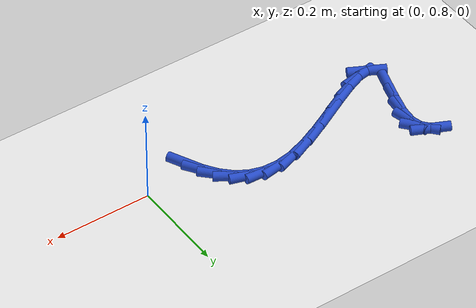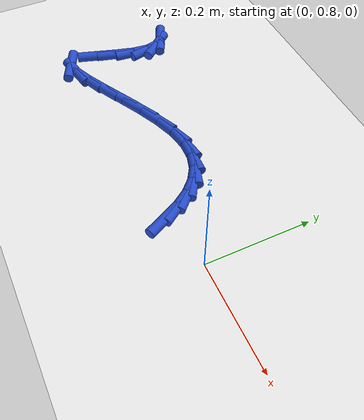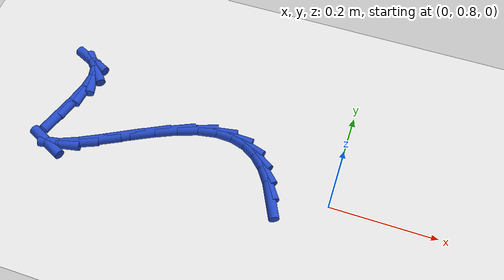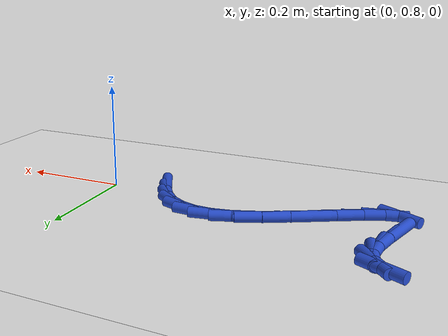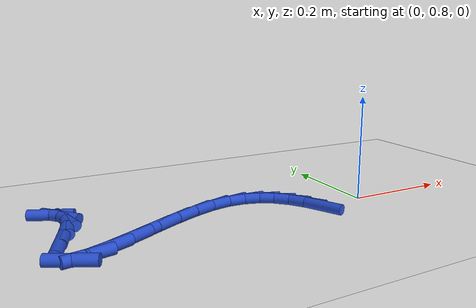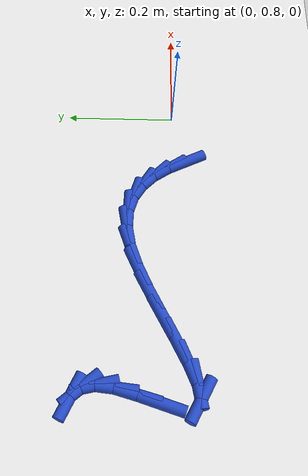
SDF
<sdf version="1.6">
 <world name="default">
  <model name="ground_plane">
   <static>1</static>
   <link name="link">
    <collision name="collision">
     <geometry><plane><normal>0 0 1</normal><size>100 100</size></plane></geometry>
     <surface><friction><ode><mu>100</mu><mu2>50</mu2></ode></friction></surface>
    </collision>
    <visual name="visual">
     <cast_shadows>0</cast_shadows>
     <geometry><plane><normal>0 0 1</normal><size>100 100</size></plane></geometry>
     <material>
      <script><uri>file://media/materials/scripts/gazebo.material</uri><name>Gazebo/WhiteGlow</name></script>
     </material>
    </visual>
   </link>
  </model>
  <model name="line">
   <link name="link_19">
    <pose>-0.10341694763051931 0.7761363183524299 0.01 0 1.57 -1.1203343275249618</pose>
    <collision name="collision">
     <geometry><cylinder><radius>0.01</radius><length>0.08</length></cylinder></geometry>
    </collision>
    <visual name="visual">
     <material>
      <script><name>Gazebo/Blue</name><uri>file://media/materials/scripts/gazebo.material</uri></script>
     </material>
     <geometry><cylinder><radius>0.01</radius><length>0.08</length></cylinder></geometry>
    </visual>
   </link>
   <link name="link_20">
    <pose>-0.11862843986905935 0.8075893912146389 0.01 0 1.57 -0.9756378624648923</pose>
    <collision name="collision">
     <geometry><cylinder><radius>0.01</radius><length>0.08</length></cylinder></geometry>
    </collision>
    <visual name="visual">
     <material>
      <script><name>Gazebo/Blue</name><uri>file://media/materials/scripts/gazebo.material</uri></script>
     </material>
     <geometry><cylinder><radius>0.01</radius><length>0.08</length></cylinder></geometry>
    </visual>
   </link>
   <link name="link_21">
    <pose>-0.13666715192454448 0.834232389323005 0.01 0 1.57 -0.7868244179630445</pose>
    <collision name="collision">
     <geometry><cylinder><radius>0.01</radius><length>0.08</length></cylinder></geometry>
    </collision>
    <visual name="visual">
     <material>
      <script><name>Gazebo/Blue</name><uri>file://media/materials/scripts/gazebo.material</uri></script>
     </material>
     <geometry><cylinder><radius>0.01</radius><length>0.08</length></cylinder></geometry>
    </visual>
   </link>
   <link name="link_22">
    <pose>-0.1578327359681547 0.8554584346625629 0.01 0 1.57 -0.5536760380981668</pose>
    <collision name="collision">
     <geometry><cylinder><radius>0.01</radius><length>0.08</length></cylinder></geometry>
    </collision>
    <visual name="visual">
     <material>
      <script><name>Gazebo/Blue</name><uri>file://media/materials/scripts/gazebo.material</uri></script>
     </material>
     <geometry><cylinder><radius>0.01</radius><length>0.08</length></cylinder></geometry>
    </visual>
   </link>
   <link name="link_23">
    <pose>-0.18242484417106986 0.8706606492183468 0.01 0 1.57 -0.2939178139863472</pose>
    <collision name="collision">
     <geometry><cylinder><radius>0.01</radius><length>0.08</length></cylinder></geometry>
    </collision>
    <visual name="visual">
     <material>
      <script><name>Gazebo/Blue</name><uri>file://media/materials/scripts/gazebo.material</uri></script>
     </material>
     <geometry><cylinder><radius>0.01</radius><length>0.08</length></cylinder></geometry>
    </visual>
   </link>
   <link name="link_24">
    <pose>-0.2107431287044702 0.8792321549753914 0.01 0 1.57 -0.04121811728965706</pose>
    <collision name="collision">
     <geometry><cylinder><radius>0.01</radius><length>0.08</length></cylinder></geometry>
    </collision>
    <visual name="visual">
     <material>
      <script><name>Gazebo/Blue</name><uri>file://media/materials/scripts/gazebo.material</uri></script>
     </material>
     <geometry><cylinder><radius>0.01</radius><length>0.08</length></cylinder></geometry>
    </visual>
   </link>
   <link name="link_25">
    <pose>-0.24308724173953547 0.8805660739187308 0.01 0 1.57 0.1757151035363333</pose>
    <collision name="collision">
     <geometry><cylinder><radius>0.01</radius><length>0.08</length></cylinder></geometry>
    </collision>
    <visual name="visual">
     <material>
      <script><name>Gazebo/Blue</name><uri>file://media/materials/scripts/gazebo.material</uri></script>
     </material>
     <geometry><cylinder><radius>0.01</radius><length>0.08</length></cylinder></geometry>
    </visual>
   </link>
   <link name="link_26">
    <pose>-0.27975683544744584 0.8740555280333993 0.01 0 1.57 0.3384609954954084</pose>
    <collision name="collision">
     <geometry><cylinder><radius>0.01</radius><length>0.08</length></cylinder></geometry>
    </collision>
    <visual name="visual">
     <material>
      <script><name>Gazebo/Blue</name><uri>file://media/materials/scripts/gazebo.material</uri></script>
     </material>
     <geometry><cylinder><radius>0.01</radius><length>0.08</length></cylinder></geometry>
    </visual>
   </link>
   <link name="link_27">
    <pose>-0.32065855699211976 0.8596578668622273 0.01 0 1.57 0.4316609335593668</pose>
    <collision name="collision">
     <geometry><cylinder><radius>0.01</radius><length>0.08</length></cylinder></geometry>
    </collision>
    <visual name="visual">
     <material>
      <script><name>Gazebo/Blue</name><uri>file://media/materials/scripts/gazebo.material</uri></script>
     </material>
     <geometry><cylinder><radius>0.01</radius><length>0.08</length></cylinder></geometry>
    </visual>
   </link>
   <link name="link_28">
    <pose>-0.36407830859653223 0.8396573033287732 0.01 0 1.57 0.4784481100144128</pose>
    <collision name="collision">
     <geometry><cylinder><radius>0.01</radius><length>0.08</length></cylinder></geometry>
    </collision>
    <visual name="visual">
     <material>
      <script><name>Gazebo/Blue</name><uri>file://media/materials/scripts/gazebo.material</uri></script>
     </material>
     <geometry><cylinder><radius>0.01</radius><length>0.08</length></cylinder></geometry>
    </visual>
   </link>
   <link name="link_29">
    <pose>-0.40788424982599303 0.816937793146551 0.01 0 1.57 0.49221924320158916</pose>
    <collision name="collision">
     <geometry><cylinder><radius>0.01</radius><length>0.08</length></cylinder></geometry>
    </collision>
    <visual name="visual">
     <material>
      <script><name>Gazebo/Blue</name><uri>file://media/materials/scripts/gazebo.material</uri></script>
     </material>
     <geometry><cylinder><radius>0.01</radius><length>0.08</length></cylinder></geometry>
    </visual>
   </link>
   <link name="link_30">
    <pose>-0.44994453981901295 0.7943832926418193 0.01 0 1.57 0.4722868155899715</pose>
    <collision name="collision">
     <geometry><cylinder><radius>0.01</radius><length>0.08</length></cylinder></geometry>
    </collision>
    <visual name="visual">
     <material>
      <script><name>Gazebo/Blue</name><uri>file://media/materials/scripts/gazebo.material</uri></script>
     </material>
     <geometry><cylinder><radius>0.01</radius><length>0.08</length></cylinder></geometry>
    </visual>
   </link>
   <link name="link_31">
    <pose>-0.4881273377141033 0.7748777581408365 0.01 0 1.57 0.39920577333253987</pose>
    <collision name="collision">
     <geometry><cylinder><radius>0.01</radius><length>0.08</length></cylinder></geometry>
    </collision>
    <visual name="visual">
     <material>
      <script><name>Gazebo/Blue</name><uri>file://media/materials/scripts/gazebo.material</uri></script>
     </material>
     <geometry><cylinder><radius>0.01</radius><length>0.08</length></cylinder></geometry>
    </visual>
   </link>
   <link name="link_32">
    <pose>-0.5203008026497754 0.7613051459698613 0.01 0 1.57 0.1953652292399074</pose>
    <collision name="collision">
     <geometry><cylinder><radius>0.01</radius><length>0.08</length></cylinder></geometry>
    </collision>
    <visual name="visual">
     <material>
      <script><name>Gazebo/Blue</name><uri>file://media/materials/scripts/gazebo.material</uri></script>
     </material>
     <geometry><cylinder><radius>0.01</radius><length>0.08</length></cylinder></geometry>
    </visual>
   </link>
   <link name="link_33">
    <pose>-0.5443330937645399 0.756549412455152 0.01 0 1.57 -0.4674465640434654</pose>
    <collision name="collision">
     <geometry><cylinder><radius>0.01</radius><length>0.08</length></cylinder></geometry>
    </collision>
    <visual name="visual">
     <material>
      <script><name>Gazebo/Blue</name><uri>file://media/materials/scripts/gazebo.material</uri></script>
     </material>
     <geometry><cylinder><radius>0.01</radius><length>0.08</length></cylinder></geometry>
    </visual>
   </link>
   <link name="link_36">
    <pose>-0.551530255745919 0.8178350262244877 0.01 0 1.57 1.2647704939799607</pose>
    <collision name="collision">
     <geometry><cylinder><radius>0.01</radius><length>0.08</length></cylinder></geometry>
    </collision>
    <visual name="visual">
     <material>
      <script><name>Gazebo/Blue</name><uri>file://media/materials/scripts/gazebo.material</uri></script>
     </material>
     <geometry><cylinder><radius>0.01</radius><length>0.08</length></cylinder></geometry>
    </visual>
   </link>
   <link name="link_37">
    <pose>-0.5393325337056601 0.8564413868809333 0.01 0 1.57 1.3020848104628495</pose>
    <collision name="collision">
     <geometry><cylinder><radius>0.01</radius><length>0.08</length></cylinder></geometry>
    </collision>
    <visual name="visual">
     <material>
      <script><name>Gazebo/Blue</name><uri>file://media/materials/scripts/gazebo.material</uri></script>
     </material>
     <geometry><cylinder><radius>0.01</radius><length>0.08</length></cylinder></geometry>
    </visual>
   </link>
   <link name="link_38">
    <pose>-0.5289854386543372 0.8940164328220209 0.01 0 1.57 1.4684994391314454</pose>
    <collision name="collision">
     <geometry><cylinder><radius>0.01</radius><length>0.08</length></cylinder></geometry>
    </collision>
    <visual name="visual">
     <material>
      <script><name>Gazebo/Blue</name><uri>file://media/materials/scripts/gazebo.material</uri></script>
     </material>
     <geometry><cylinder><radius>0.01</radius><length>0.08</length></cylinder></geometry>
    </visual>
   </link>
   <link name="link_39">
    <pose>-0.5258416901231799 0.9246407740435671 0.01 0 1.57 -1.337919915060785</pose>
    <collision name="collision">
     <geometry><cylinder><radius>0.01</radius><length>0.08</length></cylinder></geometry>
    </collision>
    <visual name="visual">
     <material>
      <script><name>Gazebo/Blue</name><uri>file://media/materials/scripts/gazebo.material</uri></script>
     </material>
     <geometry><cylinder><radius>0.01</radius><length>0.08</length></cylinder></geometry>
    </visual>
   </link>
   <link name="link_40">
    <pose>-0.5311748574808346 0.9471265575212082 0.01 0 1.57 -0.8638906822429644</pose>
    <collision name="collision">
     <geometry><cylinder><radius>0.01</radius><length>0.08</length></cylinder></geometry>
    </collision>
    <visual name="visual">
     <material>
      <script><name>Gazebo/Blue</name><uri>file://media/materials/scripts/gazebo.material</uri></script>
     </material>
     <geometry><cylinder><radius>0.01</radius><length>0.08</length></cylinder></geometry>
    </visual>
   </link>
   <link name="link_41">
    <pose>-0.5443278956909156 0.9625253117407232 0.01 0 1.57 -0.4326267000269725</pose>
    <collision name="collision">
     <geometry><cylinder><radius>0.01</radius><length>0.08</length></cylinder></geometry>
    </collision>
    <visual name="visual">
     <material>
      <script><name>Gazebo/Blue</name><uri>file://media/materials/scripts/gazebo.material</uri></script>
     </material>
     <geometry><cylinder><radius>0.01</radius><length>0.08</length></cylinder></geometry>
    </visual>
   </link>
  </model>
 </world>
</sdf>
